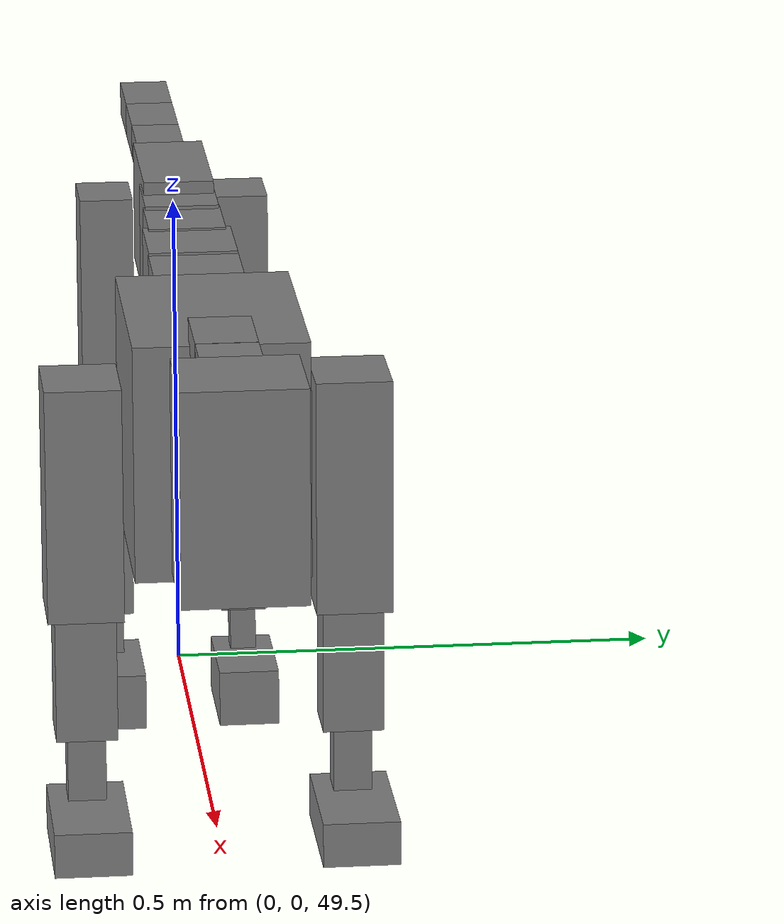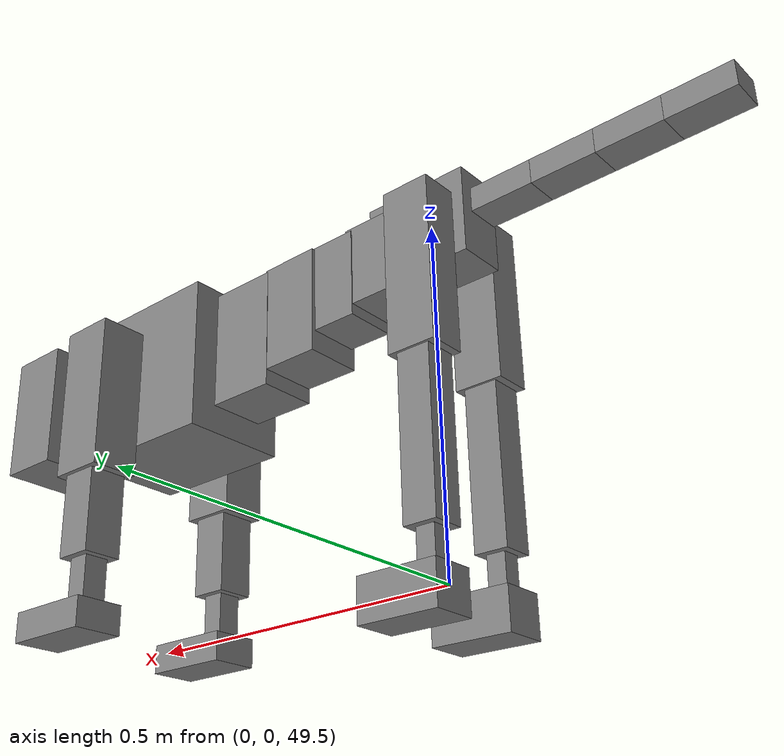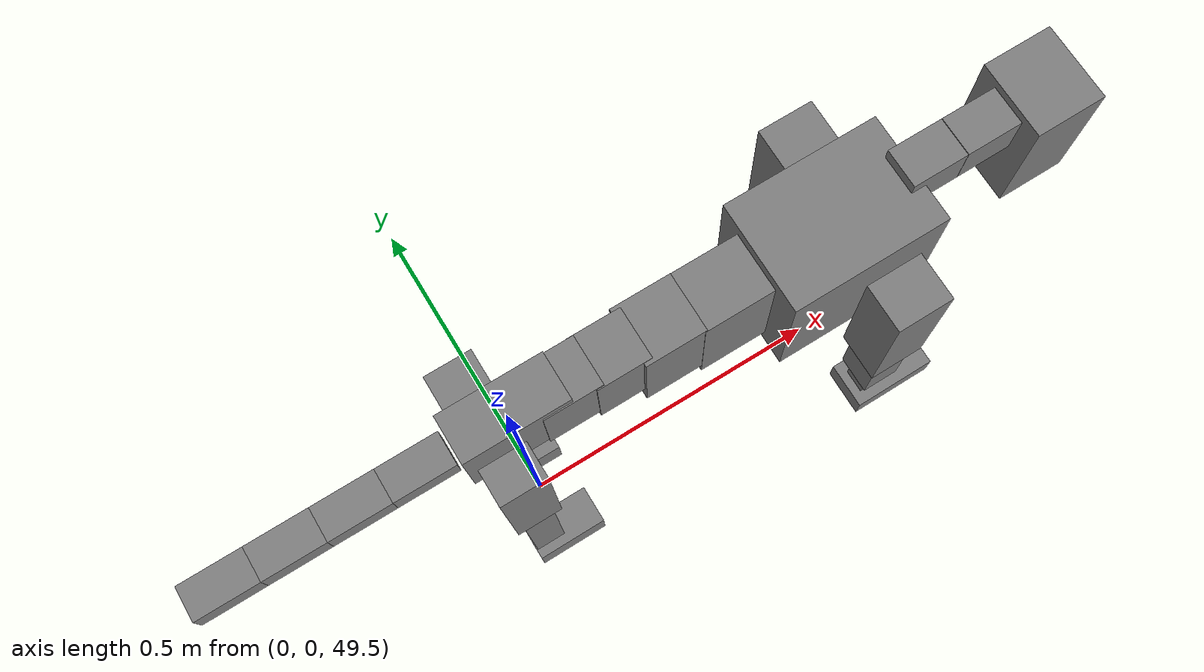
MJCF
<mujoco model="dog">

    <default>
        <joint armature="0.02" stiffness="1" damping="0.2" limited="true"/>
        <geom condim="3" friction="1 0.05 0.05" margin="0.01"/>
        <motor ctrllimited="true" ctrlrange="-1.0 1.0" forcelimited="true" gear="50"/>
    </default>

    <compiler inertiafromgeom="true" angle="radian"/>

    <option timestep="0.016" iterations="50" tolerance="1e-10" solver="Newton" jacobian="dense" cone="pyramidal"/>

    <size nconmax="20000" njmax="60000" nstack="5000000"/>
    <visual>
        <map force="0.1" zfar="30"/>
        <rgba haze="0.15 0.25 0.35 1"/>
        <quality shadowsize="2048"/>
        <global offwidth="800" offheight="800"/>
    </visual>

    <asset>
        <texture type="skybox" builtin="gradient" rgb1="0.3 0.5 0.7" rgb2="0 0 0" width="512" height="512"/>
        <texture name="texplane" type="2d" builtin="checker" rgb1=".2 .3 .4" rgb2=".1 0.15 0.2" width="512" height="512"
                 mark="cross" markrgb=".8 .8 .8"/>
        <texture name="texgeom" type="cube" builtin="flat" mark="cross" width="127" height="1278" rgb1="0.8 0.6 0.4"
                 rgb2="0.8 0.6 0.4" markrgb="1 1 1" random="0.01"/>

        <material name="matplane" reflectance="0.3" texture="texplane" texrepeat="1 1" texuniform="true"/>
        <material name="matgeom" texture="texgeom" texuniform="true" rgba="0.8 0.6 .4 1"/>
    </asset>

    <worldbody>
        <geom name="floor" pos="0 0 0" size="0 0 .25" type="plane" material="matplane" condim="3"/>

        <light directional="false" diffuse=".2 .2 .2" specular="0 0 0" pos="0 0 5" dir="0 0 -1" castshadow="false"/>
        <light mode="targetbodycom" target="torso" directional="false" diffuse=".8 .8 .8" specular="0.3 0.3 0.3"
               pos="0 0 4.0" dir="0 0 -1"/>

        <body name="root" pos="0 0 50">
            <freejoint name="root_1"/>
            <geom type="box" pos="0 0 -0.02" size="0.0774  0.0358  0.063" density="2030"/>

            <body name="spine1" pos="0.054 0 0">
                <joint name="spine1_y" axis="0 1 0" range="0 0.7" limited="true"/>
                <geom type="box" pos="0.02375 0 -0.03" size="0.04375  0.0375  0.05985" density="2030"/>

                <body name="spine2" pos="0.0612 0 0">
                    <joint name="spine2_y" axis="0 1 0" range="-0.15 0.15" limited="true"/>
                    <geom type="box" pos="0.03555  0  -0.04" size="0.04055  0.039  0.06615" density="2030"/>

                    <body name="spine3" pos="0.0730 0 0">
                        <joint name="spine3_y" axis="0 1 0" range="-0.15 0.15" limited="true"/>
                        <geom type="box" pos="0.03555  0  -0.057" size="0.04555  0.0445  0.081" density="2030"/>

                        <body name="spine4" pos="0.0780 0 0">
                            <joint name="spine4_y" axis="0 1 0" range="-0.15 0.15" limited="true"/>
                            <geom type="box" pos="0.05265  0  -0.07" size="0.05265  0.045  0.09135" density="2030"/>

                            <body name="torso" pos="0.1082 0 0">
                                <joint name="torso_y" axis="0 1 0" range="-0.15 0.15" limited="true"/>
                                <geom type="box" pos="0.11925  0  -0.085" size="0.11925  0.085  0.11745"
                                      density="2030"/>

                                <body name="neck1" pos="0.2160  0   0.0180">
                                    <joint name="neck1_y" axis="0 1 0" range="-1.2  -1" limited="true"/>
                                    <geom type="box" pos="0.0423  0  0" size="0.0423  0.03  0.036" density="2325"/>

                                    <body name="neck2" pos="0.0853  0  0">
                                        <joint name="neck2_y" axis="0 1 0" range="0.1  0" limited="true"/>
                                        <geom type="box" pos="0.0423  0  0" size="0.0423  0.03  0.036" density="2325"/>

                                        <body name="head" pos="0.0853  0  0">
                                            <joint name="head_y" axis="0 1 0" range="-0.3  -0.2" limited="true"/>
                                            <geom type="box" pos="0.0531  0  -0.055" size="0.0531  0.06  0.1044"
                                                  density="4030"/>

                                        </body>
                                    </body>
                                </body>

                                <body name="front_shoulder" pos="0.156  0   -0.0480">
                                    <joint name="front_shoulder_y" axis="0 1 0" range="-1 1.5" limited="true"/>
                                    <geom type="box" pos="0 0.13 -0.0904" size="0.0433  0.0371  0.1171" density="1158"/>
                                    <geom type="box" pos="0 -0.13 -0.0904" size="0.0433  0.0371  0.1171"
                                          density="1158"/>

                                    <body name="front_elbow" pos="0  0  -0.1808">
                                        <joint name="front_elbow_y" axis="0 1 0" range="-2 0" limited="true"/>
                                        <geom type="box" pos="0 0.13 -0.0765" size="0.0293  0.0299  0.0765"
                                              density="1081"/>
                                        <geom type="box" pos="0 -0.13 -0.0765" size="0.0293  0.0299  0.0765"
                                              density="1081"/>

                                        <body name="front_wrist" pos="0  0  -0.1530">
                                            <joint name="front_wrist_y" axis="0 1 0" range="-0.2 0" limited="true"/>
                                            <geom type="box" pos="0 0.13 -0.0405" size="0.0169  0.0188  0.0537"
                                                  density="1664"/>
                                            <geom type="box" pos="0 -0.13 -0.0405" size="0.0169  0.0188  0.0537"
                                                  density="1664"/>

                                            <body name="front_finger_end" pos="0  0  -0.0810">
                                                <joint name="front_finger_y" axis="0 1 0" range="-0.4 1"
                                                       limited="true"/>
                                                <geom type="box" pos="0.0377  0.13  -0.0072"
                                                      size="0.0692  0.0377  0.0222" density="1515"/>
                                                <geom type="box" pos="0.0377  -0.13  -0.0072"
                                                      size="0.0692  0.0377  0.0222" density="1515"/>

                                            </body>

                                        </body>
                                    </body>
                                </body>

                            </body>
                        </body>
                    </body>
                </body>
            </body>

            <body name="back_hip" pos="-0.03 0 -0.018">
                <joint name="back_hip_y" axis="0 1 0" range="-1.5 0.3" limited="true"/>
                <geom type="box" pos="0 0.07 -0.0944" size="0.0348  0.0273  0.1172" density="1154"/>
                <geom type="box" pos="0 -0.07 -0.0944" size="0.0348  0.0273  0.1172" density="1154"/>

                <body name="back_knee" pos="0  0  -0.1888">
                    <joint name="back_knee_y" axis="0 1 0" range="0 2.8" limited="true"/>
                    <geom type="box" pos="0 0.07 -0.1153" size="0.0238  0.0234  0.1309" density="1227"/>
                    <geom type="box" pos="0 -0.07 -0.1153" size="0.0238  0.0234  0.1309" density="1227"/>

                    <body name="back_ankle" pos="0  0  -0.2307">
                        <joint name="back_ankle_y" axis="0 1 0" range="-2.2 0" limited="true"/>
                        <geom type="box" pos="0 0.07 -0.0387" size="0.0133  0.0133  0.0499" density="1284"/>
                        <geom type="box" pos="0 -0.07 -0.0387" size="0.0133  0.0133  0.0499" density="1284"/>

                        <body name="back_toe_end" pos="0  0  -0.0773">
                            <joint name="back_toe_y" axis="0 1 0" range="-0.4 1" limited="true"/>
                            <geom type="box" pos="0.0312  0.07  -0.0144" size="0.0573  0.0312  0.0294" density="1515"/>
                            <geom type="box" pos="0.0312  -0.07  -0.0144" size="0.0573  0.0312  0.0294" density="1515"/>

                        </body>
                    </body>
                </body>
            </body>

            <body name="tail1" pos="-0.074 0 -0.006">
                <joint name="tail1_y" axis="0 1 0" range="-0.2 0.2" limited="true"/>
                <geom type="box" pos="-0.0536  0  0" size="0.045  0.025  0.0175" density="1587"/>

                <body name="tail2" pos="-0.09 0 0">
                    <joint name="tail2_y" axis="0 1 0" range="-0.2 0.2" limited="true"/>
                    <geom type="box" pos="-0.0536  0  0" size="0.045  0.025  0.0175" density="1587"/>

                    <body name="tail3" pos="-0.09 0 0">
                        <joint name="tail3_y" axis="0 1 0" range="-0.2 0.2" limited="true"/>
                        <geom type="box" pos="-0.0536  0  0" size="0.045  0.025  0.0175" density="1587"/>

                        <body name="tail4" pos="-0.09 0 0">
                            <joint name="tail4_y" axis="0 1 0" range="-0.2 0.2" limited="true"/>
                            <geom type="box" pos="-0.0536  0  0" size="0.045  0.025  0.0175" density="1587"/>

                        </body>
                    </body>
                </body>
            </body>
        </body>
    </worldbody>

    <actuator>
        <motor joint="spine1_y" forcerange="-150 150     "/>
        <motor joint="spine2_y" forcerange="-150 150     "/>
        <motor joint="spine3_y" forcerange="-150 150     "/>
        <motor joint="spine4_y" forcerange="-150 150     "/>
        <motor joint="torso_y" forcerange="-150 150     "/>
        <motor joint="neck1_y" forcerange="-100 100       "/>
        <motor joint="neck2_y" forcerange="-100 100       "/>
        <motor joint="head_y" forcerange="-150 150       "/>
        <motor joint="front_shoulder_y" forcerange="-191.55 155.45"/>
        <motor joint="front_elbow_y" forcerange="-132.81 184.99"/>
        <motor joint="front_wrist_y" forcerange="-96.74 53.82"/>
        <motor joint="front_finger_y" forcerange="-71.71 89.49"/>
        <motor joint="back_hip_y" forcerange="-211.58 351.98"/>
        <motor joint="back_knee_y" forcerange="-260.30 280.73"/>
        <motor joint="back_angle_y" forcerange="-62.67 50.56"/>
        <motor joint="back_toe_y" forcerange="-93.28 76.69"/>
        <motor joint="tail1_y" forcerange="-50 50     "/>
        <motor joint="tail2_y" forcerange="-50 50     "/>
        <motor joint="tail3_y" forcerange="-50 50     "/>
        <motor joint="tail4_y" forcerange="-50 50     "/>
    </actuator>
</mujoco>
